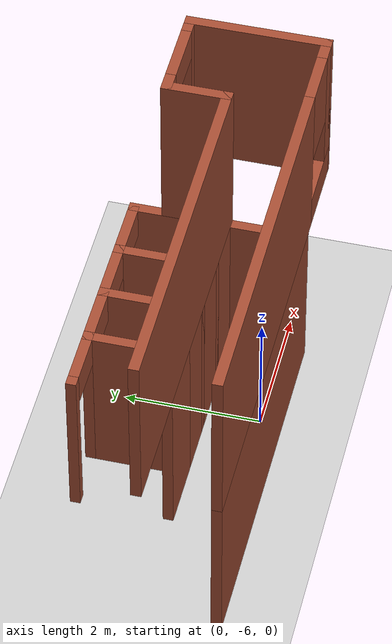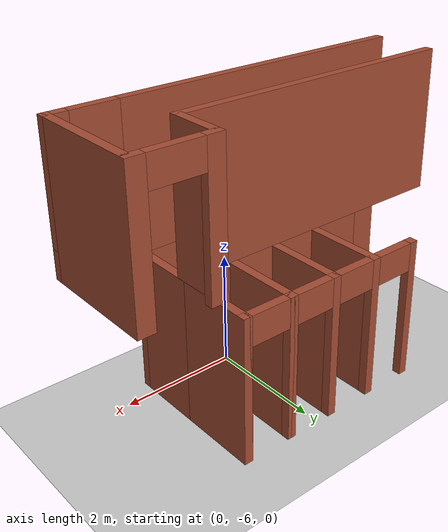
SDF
<sdf version="1.7">
 <world name="default">
  <model name="ground_plane">
   <static>1</static>
   <link name="link">
    <collision name="collision">
     <geometry><plane><normal>0 0 1</normal><size>100 100</size></plane></geometry>
     <surface>
      <contact><collide_bitmask>65535</collide_bitmask></contact>
      <friction><ode><mu>100</mu><mu2>50</mu2></ode></friction>
     </surface>
    </collision>
    <visual name="visual">
     <cast_shadows>0</cast_shadows>
     <geometry><plane><normal>0 0 1</normal><size>100 100</size></plane></geometry>
     <material>
      <script><uri>file://media/materials/scripts/gazebo.material</uri><name>Gazebo/Grey</name></script>
     </material>
    </visual>
   </link>
  </model>
  <model name="test_building">
   <link name="Wall_155">
    <pose>-1.575 -3.8 0 0 -0 0</pose>
    <visual name="Wall_155_Visual_0">
     <pose>-0.425055 0 1.25 0 -0 0</pose>
     <geometry><box><size>0.14989 0.15 2.5</size></box></geometry>
     <material>
      <script><uri>file://media/materials/scripts/gazebo.material</uri><name>Gazebo/Bricks</name></script>
      <ambient>1 1 1 1</ambient>
     </material>
     <meta><layer>0</layer></meta>
    </visual>
    <collision name="Wall_155_Collision_0">
     <geometry><box><size>0.14989 0.15 2.5</size></box></geometry>
     <pose>-0.425055 0 1.25 0 -0 0</pose>
    </collision>
    <visual name="Wall_155_Visual_1">
     <pose>0.424945 0 1.25 0 -0 0</pose>
     <geometry><box><size>0.15011 0.15 2.5</size></box></geometry>
     <material>
      <script><uri>file://media/materials/scripts/gazebo.material</uri><name>Gazebo/Bricks</name></script>
      <ambient>1 1 1 1</ambient>
     </material>
     <meta><layer>0</layer></meta>
    </visual>
    <collision name="Wall_155_Collision_1">
     <geometry><box><size>0.15011 0.15 2.5</size></box></geometry>
     <pose>0.424945 0 1.25 0 -0 0</pose>
    </collision>
    <visual name="Wall_155_Visual_2">
     <pose>-0.00011 0 2.25 0 -0 0</pose>
     <geometry><box><size>0.7 0.15 0.5</size></box></geometry>
     <material>
      <script><uri>file://media/materials/scripts/gazebo.material</uri><name>Gazebo/Bricks</name></script>
      <ambient>1 1 1 1</ambient>
     </material>
     <meta><layer>0</layer></meta>
    </visual>
    <collision name="Wall_155_Collision_2">
     <geometry><box><size>0.7 0.15 0.5</size></box></geometry>
     <pose>-0.00011 0 2.25 0 -0 0</pose>
    </collision>
   </link>
   <link name="Wall_156">
    <collision name="Wall_156_Collision">
     <geometry><box><size>1.5 0.15 2.5</size></box></geometry>
     <pose>0 0 1.25 0 -0 0</pose>
    </collision>
    <visual name="Wall_156_Visual">
     <pose>0 0 1.25 0 -0 0</pose>
     <geometry><box><size>1.5 0.15 2.5</size></box></geometry>
     <material>
      <script><uri>file://media/materials/scripts/gazebo.material</uri><name>Gazebo/Bricks</name></script>
      <ambient>1 1 1 1</ambient>
     </material>
     <meta><layer>0</layer></meta>
    </visual>
    <pose>-1.15 -4.475 0 0 -0 -1.5708</pose>
   </link>
   <link name="Wall_157">
    <collision name="Wall_157_Collision">
     <geometry><box><size>1 0.15 2.5</size></box></geometry>
     <pose>0 0 1.25 0 -0 0</pose>
    </collision>
    <visual name="Wall_157_Visual">
     <pose>0 0 1.25 0 -0 0</pose>
     <geometry><box><size>1 0.15 2.5</size></box></geometry>
     <material>
      <script><uri>file://media/materials/scripts/gazebo.material</uri><name>Gazebo/Bricks</name></script>
      <ambient>1 1 1 1</ambient>
     </material>
     <meta><layer>0</layer></meta>
    </visual>
    <pose>-1.575 -5.15 0 0 -0 3.14159</pose>
   </link>
   <link name="Wall_161">
    <collision name="Wall_161_Collision">
     <geometry><box><size>1 0.15 2.5</size></box></geometry>
     <pose>0 0 1.25 0 -0 0</pose>
    </collision>
    <visual name="Wall_161_Visual">
     <pose>0 0 1.25 0 -0 0</pose>
     <geometry><box><size>1 0.15 2.5</size></box></geometry>
     <material>
      <script><uri>file://media/materials/scripts/gazebo.material</uri><name>Gazebo/Bricks</name></script>
      <ambient>1 1 1 1</ambient>
     </material>
     <meta><layer>0</layer></meta>
    </visual>
    <pose>-0.725 -5.15 0 0 -0 0</pose>
   </link>
   <link name="Wall_162">
    <collision name="Wall_162_Collision">
     <geometry><box><size>1.5 0.15 2.5</size></box></geometry>
     <pose>0 0 1.25 0 -0 0</pose>
    </collision>
    <visual name="Wall_162_Visual">
     <pose>0 0 1.25 0 -0 0</pose>
     <geometry><box><size>1.5 0.15 2.5</size></box></geometry>
     <material>
      <script><uri>file://media/materials/scripts/gazebo.material</uri><name>Gazebo/Bricks</name></script>
      <ambient>1 1 1 1</ambient>
     </material>
     <meta><layer>0</layer></meta>
    </visual>
    <pose>-0.3 -4.475 0 0 -0 1.5708</pose>
   </link>
   <link name="Wall_163">
    <pose>-0.725 -3.8 0 0 -0 3.14159</pose>
    <visual name="Wall_163_Visual_0">
     <pose>-0.425964 0 1.25 0 -0 0</pose>
     <geometry><box><size>0.148072 0.15 2.5</size></box></geometry>
     <material>
      <script><uri>file://media/materials/scripts/gazebo.material</uri><name>Gazebo/Bricks</name></script>
      <ambient>1 1 1 1</ambient>
     </material>
     <meta><layer>0</layer></meta>
    </visual>
    <collision name="Wall_163_Collision_0">
     <geometry><box><size>0.148072 0.15 2.5</size></box></geometry>
     <pose>-0.425964 0 1.25 0 -0 0</pose>
    </collision>
    <visual name="Wall_163_Visual_1">
     <pose>0.424036 0 1.25 0 -0 0</pose>
     <geometry><box><size>0.151928 0.15 2.5</size></box></geometry>
     <material>
      <script><uri>file://media/materials/scripts/gazebo.material</uri><name>Gazebo/Bricks</name></script>
      <ambient>1 1 1 1</ambient>
     </material>
     <meta><layer>0</layer></meta>
    </visual>
    <collision name="Wall_163_Collision_1">
     <geometry><box><size>0.151928 0.15 2.5</size></box></geometry>
     <pose>0.424036 0 1.25 0 -0 0</pose>
    </collision>
    <visual name="Wall_163_Visual_2">
     <pose>-0.001928 0 2.25 0 -0 0</pose>
     <geometry><box><size>0.7 0.15 0.5</size></box></geometry>
     <material>
      <script><uri>file://media/materials/scripts/gazebo.material</uri><name>Gazebo/Bricks</name></script>
      <ambient>1 1 1 1</ambient>
     </material>
     <meta><layer>0</layer></meta>
    </visual>
    <collision name="Wall_163_Collision_2">
     <geometry><box><size>0.7 0.15 0.5</size></box></geometry>
     <pose>-0.001928 0 2.25 0 -0 0</pose>
    </collision>
   </link>
   <link name="Wall_165">
    <collision name="Wall_165_Collision">
     <geometry><box><size>1 0.15 2.5</size></box></geometry>
     <pose>0 0 1.25 0 -0 0</pose>
    </collision>
    <visual name="Wall_165_Visual">
     <pose>0 0 1.25 0 -0 0</pose>
     <geometry><box><size>1 0.15 2.5</size></box></geometry>
     <material>
      <script><uri>file://media/materials/scripts/gazebo.material</uri><name>Gazebo/Bricks</name></script>
      <ambient>1 1 1 1</ambient>
     </material>
     <meta><layer>0</layer></meta>
    </visual>
    <pose>0.125 -5.15 0 0 -0 0</pose>
   </link>
   <link name="Wall_166">
    <collision name="Wall_166_Collision">
     <geometry><box><size>1.5 0.15 2.5</size></box></geometry>
     <pose>0 0 1.25 0 -0 0</pose>
    </collision>
    <visual name="Wall_166_Visual">
     <pose>0 0 1.25 0 -0 0</pose>
     <geometry><box><size>1.5 0.15 2.5</size></box></geometry>
     <material>
      <script><uri>file://media/materials/scripts/gazebo.material</uri><name>Gazebo/Bricks</name></script>
      <ambient>1 1 1 1</ambient>
     </material>
     <meta><layer>0</layer></meta>
    </visual>
    <pose>0.55 -4.475 0 0 -0 1.5708</pose>
   </link>
   <link name="Wall_167">
    <pose>0.125 -3.8 0 0 -0 3.14159</pose>
    <visual name="Wall_167_Visual_0">
     <pose>-0.424905 0 1.25 0 -0 0</pose>
     <geometry><box><size>0.150191 0.15 2.5</size></box></geometry>
     <material>
      <script><uri>file://media/materials/scripts/gazebo.material</uri><name>Gazebo/Bricks</name></script>
      <ambient>1 1 1 1</ambient>
     </material>
     <meta><layer>0</layer></meta>
    </visual>
    <collision name="Wall_167_Collision_0">
     <geometry><box><size>0.150191 0.15 2.5</size></box></geometry>
     <pose>-0.424905 0 1.25 0 -0 0</pose>
    </collision>
    <visual name="Wall_167_Visual_1">
     <pose>0.425095 0 1.25 0 -0 0</pose>
     <geometry><box><size>0.149809 0.15 2.5</size></box></geometry>
     <material>
      <script><uri>file://media/materials/scripts/gazebo.material</uri><name>Gazebo/Bricks</name></script>
      <ambient>1 1 1 1</ambient>
     </material>
     <meta><layer>0</layer></meta>
    </visual>
    <collision name="Wall_167_Collision_1">
     <geometry><box><size>0.149809 0.15 2.5</size></box></geometry>
     <pose>0.425095 0 1.25 0 -0 0</pose>
    </collision>
    <visual name="Wall_167_Visual_2">
     <pose>0.000191 0 2.25 0 -0 0</pose>
     <geometry><box><size>0.7 0.15 0.5</size></box></geometry>
     <material>
      <script><uri>file://media/materials/scripts/gazebo.material</uri><name>Gazebo/Bricks</name></script>
      <ambient>1 1 1 1</ambient>
     </material>
     <meta><layer>0</layer></meta>
    </visual>
    <collision name="Wall_167_Collision_2">
     <geometry><box><size>0.7 0.15 0.5</size></box></geometry>
     <pose>0.000191 0 2.25 0 -0 0</pose>
    </collision>
   </link>
   <link name="Wall_169">
    <pose>0.975 -3.8 0 0 -0 0</pose>
    <visual name="Wall_169_Visual_0">
     <pose>-0.424076 0 1.25 0 -0 0</pose>
     <geometry><box><size>0.151847 0.15 2.5</size></box></geometry>
     <material>
      <script><uri>file://media/materials/scripts/gazebo.material</uri><name>Gazebo/Bricks</name></script>
      <ambient>1 1 1 1</ambient>
     </material>
     <meta><layer>0</layer></meta>
    </visual>
    <collision name="Wall_169_Collision_0">
     <geometry><box><size>0.151847 0.15 2.5</size></box></geometry>
     <pose>-0.424076 0 1.25 0 -0 0</pose>
    </collision>
    <visual name="Wall_169_Visual_1">
     <pose>0.425924 0 1.25 0 -0 0</pose>
     <geometry><box><size>0.148153 0.15 2.5</size></box></geometry>
     <material>
      <script><uri>file://media/materials/scripts/gazebo.material</uri><name>Gazebo/Bricks</name></script>
      <ambient>1 1 1 1</ambient>
     </material>
     <meta><layer>0</layer></meta>
    </visual>
    <collision name="Wall_169_Collision_1">
     <geometry><box><size>0.148153 0.15 2.5</size></box></geometry>
     <pose>0.425924 0 1.25 0 -0 0</pose>
    </collision>
    <visual name="Wall_169_Visual_2">
     <pose>0.001847 0 2.25 0 -0 0</pose>
     <geometry><box><size>0.7 0.15 0.5</size></box></geometry>
     <material>
      <script><uri>file://media/materials/scripts/gazebo.material</uri><name>Gazebo/Bricks</name></script>
      <ambient>1 1 1 1</ambient>
     </material>
     <meta><layer>0</layer></meta>
    </visual>
    <collision name="Wall_169_Collision_2">
     <geometry><box><size>0.7 0.15 0.5</size></box></geometry>
     <pose>0.001847 0 2.25 0 -0 0</pose>
    </collision>
   </link>
   <link name="Wall_170">
    <collision name="Wall_170_Collision">
     <geometry><box><size>1.5 0.15 2.5</size></box></geometry>
     <pose>0 0 1.25 0 -0 0</pose>
    </collision>
    <visual name="Wall_170_Visual">
     <pose>0 0 1.25 0 -0 0</pose>
     <geometry><box><size>1.5 0.15 2.5</size></box></geometry>
     <material>
      <script><uri>file://media/materials/scripts/gazebo.material</uri><name>Gazebo/Bricks</name></script>
      <ambient>1 1 1 1</ambient>
     </material>
     <meta><layer>0</layer></meta>
    </visual>
    <pose>1.4 -4.475 0 0 -0 -1.5708</pose>
   </link>
   <link name="Wall_171">
    <collision name="Wall_171_Collision">
     <geometry><box><size>1 0.15 2.5</size></box></geometry>
     <pose>0 0 1.25 0 -0 0</pose>
    </collision>
    <visual name="Wall_171_Visual">
     <pose>0 0 1.25 0 -0 0</pose>
     <geometry><box><size>1 0.15 2.5</size></box></geometry>
     <material>
      <script><uri>file://media/materials/scripts/gazebo.material</uri><name>Gazebo/Bricks</name></script>
      <ambient>1 1 1 1</ambient>
     </material>
     <meta><layer>0</layer></meta>
    </visual>
    <pose>0.975 -5.15 0 0 -0 3.14159</pose>
   </link>
   <link name="Wall_185">
    <collision name="Wall_185_Collision">
     <geometry><box><size>1.25 0.15 2.5</size></box></geometry>
     <pose>0 0 1.25 0 -0 0</pose>
    </collision>
    <visual name="Wall_185_Visual">
     <pose>0 0 1.25 0 -0 0</pose>
     <geometry><box><size>1.25 0.15 2.5</size></box></geometry>
     <material>
      <script><uri>file://media/materials/scripts/gazebo.material</uri><name>Gazebo/Bricks</name></script>
      <ambient>1 1 1 1</ambient>
     </material>
     <meta><layer>0</layer></meta>
    </visual>
    <pose>1.4 -5.7 0 0 -0 -1.5708</pose>
   </link>
   <link name="Wall_187">
    <collision name="Wall_187_Collision">
     <geometry><box><size>5.25 0.15 2.5</size></box></geometry>
     <pose>0 0 1.25 0 -0 0</pose>
    </collision>
    <visual name="Wall_187_Visual">
     <pose>0 0 1.25 0 -0 0</pose>
     <geometry><box><size>5.25 0.15 2.5</size></box></geometry>
     <material>
      <script><uri>file://media/materials/scripts/gazebo.material</uri><name>Gazebo/Bricks</name></script>
      <ambient>1 1 1 1</ambient>
     </material>
     <meta><layer>0</layer></meta>
    </visual>
    <pose>-1.15 -6.25 0 0 -0 3.14159</pose>
   </link>
   <link name="Wall_379">
    <collision name="Wall_379_Collision">
     <geometry><box><size>5.25 0.15 2.5</size></box></geometry>
     <pose>0 0 1.25 0 -0 0</pose>
    </collision>
    <visual name="Wall_379_Visual">
     <pose>0 0 1.25 0 -0 0</pose>
     <geometry><box><size>5.25 0.15 2.5</size></box></geometry>
     <material>
      <script><uri>file://media/materials/scripts/gazebo.material</uri><name>Gazebo/Bricks</name></script>
      <ambient>1 1 1 1</ambient>
     </material>
     <meta><layer>1</layer></meta>
    </visual>
    <pose>-1.15 -5.15 2.5 0 -0 3.14159</pose>
   </link>
   <link name="Wall_381">
    <collision name="Wall_381_Collision">
     <geometry><box><size>1 0.15 2.5</size></box></geometry>
     <pose>0 0 1.25 0 -0 0</pose>
    </collision>
    <visual name="Wall_381_Visual">
     <pose>0 0 1.25 0 -0 0</pose>
     <geometry><box><size>1 0.15 2.5</size></box></geometry>
     <material>
      <script><uri>file://media/materials/scripts/gazebo.material</uri><name>Gazebo/Bricks</name></script>
      <ambient>1 1 1 1</ambient>
     </material>
     <meta><layer>1</layer></meta>
    </visual>
    <pose>1.4 -4.725 2.5 0 -0 1.5708</pose>
   </link>
   <link name="Wall_382">
    <pose>2.075 -4.3 2.5 0 -0 0</pose>
    <visual name="Wall_382_Visual_0">
     <pose>-0.60021 0 1.25 0 -0 0</pose>
     <geometry><box><size>0.299581 0.15 2.5</size></box></geometry>
     <material>
      <script><uri>file://media/materials/scripts/gazebo.material</uri><name>Gazebo/Bricks</name></script>
      <ambient>1 1 1 1</ambient>
     </material>
     <meta><layer>1</layer></meta>
    </visual>
    <collision name="Wall_382_Collision_0">
     <geometry><box><size>0.299581 0.15 2.5</size></box></geometry>
     <pose>-0.60021 0 1.25 0 -0 0</pose>
    </collision>
    <visual name="Wall_382_Visual_1">
     <pose>0.59979 0 1.25 0 -0 0</pose>
     <geometry><box><size>0.300419 0.15 2.5</size></box></geometry>
     <material>
      <script><uri>file://media/materials/scripts/gazebo.material</uri><name>Gazebo/Bricks</name></script>
      <ambient>1 1 1 1</ambient>
     </material>
     <meta><layer>1</layer></meta>
    </visual>
    <collision name="Wall_382_Collision_1">
     <geometry><box><size>0.300419 0.15 2.5</size></box></geometry>
     <pose>0.59979 0 1.25 0 -0 0</pose>
    </collision>
    <visual name="Wall_382_Visual_2">
     <pose>-0.000419 0 2.25 0 -0 0</pose>
     <geometry><box><size>0.9 0.15 0.5</size></box></geometry>
     <material>
      <script><uri>file://media/materials/scripts/gazebo.material</uri><name>Gazebo/Bricks</name></script>
      <ambient>1 1 1 1</ambient>
     </material>
     <meta><layer>1</layer></meta>
    </visual>
    <collision name="Wall_382_Collision_2">
     <geometry><box><size>0.9 0.15 0.5</size></box></geometry>
     <pose>-0.000419 0 2.25 0 -0 0</pose>
    </collision>
   </link>
   <link name="Wall_383">
    <collision name="Wall_383_Collision">
     <geometry><box><size>2.1 0.15 2.5</size></box></geometry>
     <pose>0 0 1.25 0 -0 0</pose>
    </collision>
    <visual name="Wall_383_Visual">
     <pose>0 0 1.25 0 -0 0</pose>
     <geometry><box><size>2.1 0.15 2.5</size></box></geometry>
     <material>
      <script><uri>file://media/materials/scripts/gazebo.material</uri><name>Gazebo/Bricks</name></script>
      <ambient>1 1 1 1</ambient>
     </material>
     <meta><layer>1</layer></meta>
    </visual>
    <pose>2.75 -5.275 2.5 0 -0 -1.5708</pose>
   </link>
   <link name="Wall_385">
    <pose>-0.475 -6.25 2.5 0 -0 0</pose>
    <visual name="Wall_385_Visual_0">
     <pose>-0.594329 0 1.25 0 -0 0</pose>
     <geometry><box><size>5.41134 0.15 2.5</size></box></geometry>
     <material>
      <script><uri>file://media/materials/scripts/gazebo.material</uri><name>Gazebo/Bricks</name></script>
      <ambient>1 1 1 1</ambient>
     </material>
     <meta><layer>1</layer></meta>
    </visual>
    <collision name="Wall_385_Collision_0">
     <geometry><box><size>5.41134 0.15 2.5</size></box></geometry>
     <pose>-0.594329 0 1.25 0 -0 0</pose>
    </collision>
    <visual name="Wall_385_Visual_1">
     <pose>2.70567 0 0.25 0 -0 0</pose>
     <geometry><box><size>1.18866 0.15 0.5</size></box></geometry>
     <material>
      <script><uri>file://media/materials/scripts/gazebo.material</uri><name>Gazebo/Bricks</name></script>
      <ambient>1 1 1 1</ambient>
     </material>
     <meta><layer>1</layer></meta>
    </visual>
    <collision name="Wall_385_Collision_1">
     <geometry><box><size>1.18866 0.15 0.5</size></box></geometry>
     <pose>2.70567 0 0.25 0 -0 0</pose>
    </collision>
    <visual name="Wall_385_Visual_2">
     <pose>3.10567 0 1.5 0 -0 0</pose>
     <geometry><box><size>0.388657 0.15 2</size></box></geometry>
     <material>
      <script><uri>file://media/materials/scripts/gazebo.material</uri><name>Gazebo/Bricks</name></script>
      <ambient>1 1 1 1</ambient>
     </material>
     <meta><layer>1</layer></meta>
    </visual>
    <collision name="Wall_385_Collision_2">
     <geometry><box><size>0.388657 0.15 2</size></box></geometry>
     <pose>3.10567 0 1.5 0 -0 0</pose>
    </collision>
    <visual name="Wall_385_Visual_3">
     <pose>2.51134 0 1.9 0 -0 0</pose>
     <geometry><box><size>0.8 0.15 1.2</size></box></geometry>
     <material>
      <script><uri>file://media/materials/scripts/gazebo.material</uri><name>Gazebo/Bricks</name></script>
      <ambient>1 1 1 1</ambient>
     </material>
     <meta><layer>1</layer></meta>
    </visual>
    <collision name="Wall_385_Collision_3">
     <geometry><box><size>0.8 0.15 1.2</size></box></geometry>
     <pose>2.51134 0 1.9 0 -0 0</pose>
    </collision>
   </link>
   <static>1</static>
  </model>
 </world>
</sdf>
